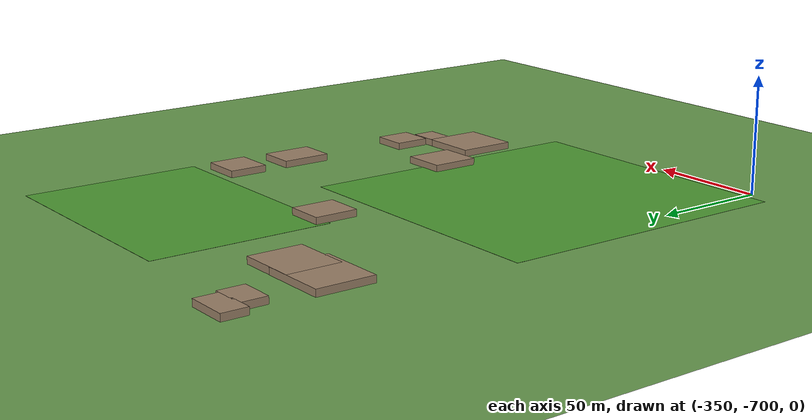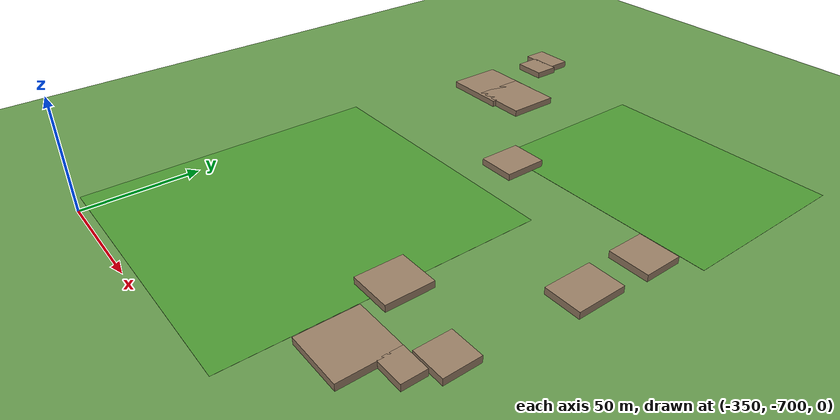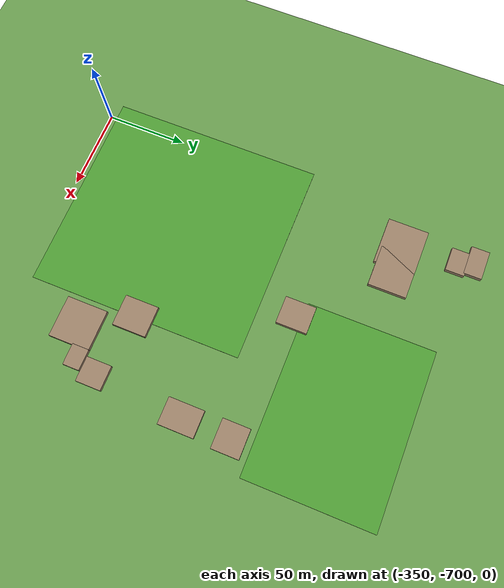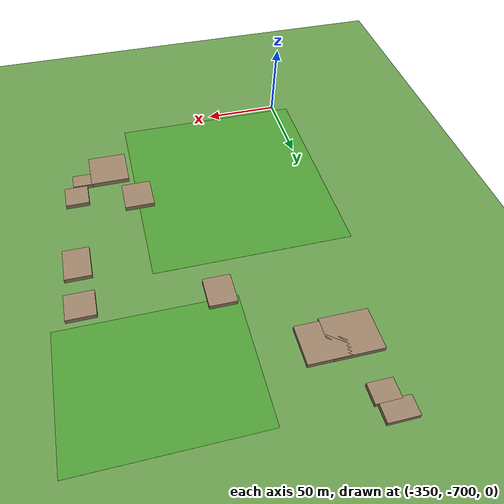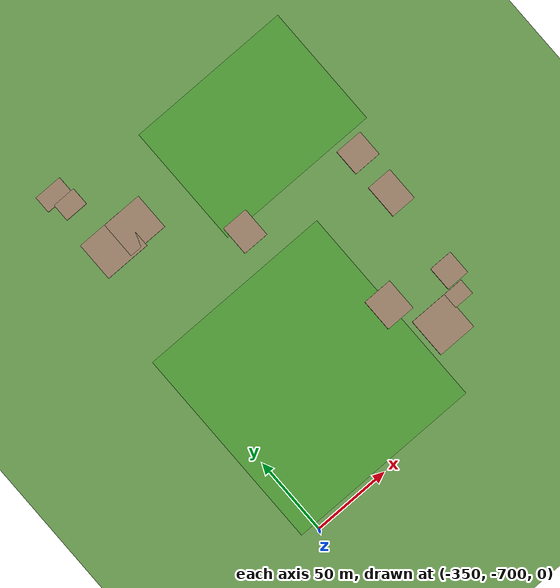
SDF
<sdf version="1.9">
 <world name="kimje_farmland">
  <model name="ground_plane">
   <static>true</static>
   <link name="link">
    <collision name="collision">
     <geometry><plane><normal>0 0 1</normal><size>2000 2000</size></plane></geometry>
    </collision>
    <visual name="visual">
     <geometry><plane><normal>0 0 1</normal><size>2000 2000</size></plane></geometry>
     <material><ambient>0.4 0.6 0.3 1</ambient><diffuse>0.4 0.6 0.3 1</diffuse></material>
    </visual>
   </link>
  </model>
  <model name="osm_178">
   <static>true</static>
   <pose>-195.23 -636.33 1.500 0 0 0</pose>
   <link name="link">
    <collision name="collision"><geometry><box><size>15.09 15.52 3.000</size></box></geometry></collision>
    <visual name="visual">
     <geometry><box><size>15.09 15.52 3.000</size></box></geometry>
     <material><ambient>0.6 0.5 0.4 1</ambient><diffuse>0.6 0.5 0.4 1</diffuse></material>
    </visual>
   </link>
  </model>
  <model name="osm_179">
   <static>true</static>
   <pose>-200.03 -649.95 1.500 0 0 0</pose>
   <link name="link">
    <collision name="collision"><geometry><box><size>12.92 10.24 3.000</size></box></geometry></collision>
    <visual name="visual">
     <geometry><box><size>12.92 10.24 3.000</size></box></geometry>
     <material><ambient>0.6 0.5 0.4 1</ambient><diffuse>0.6 0.5 0.4 1</diffuse></material>
    </visual>
   </link>
  </model>
  <model name="osm_182">
   <static>true</static>
   <pose>-218.29 -657.49 1.500 0 0 0</pose>
   <link name="link">
    <collision name="collision"><geometry><box><size>25.18 25.29 3.000</size></box></geometry></collision>
    <visual name="visual">
     <geometry><box><size>25.18 25.29 3.000</size></box></geometry>
     <material><ambient>0.6 0.5 0.4 1</ambient><diffuse>0.6 0.5 0.4 1</diffuse></material>
    </visual>
   </link>
  </model>
  <model name="osm_183">
   <static>true</static>
   <pose>-234.66 -628.58 1.500 0 0 0</pose>
   <link name="link">
    <collision name="collision"><geometry><box><size>19.01 20.77 3.000</size></box></geometry></collision>
    <visual name="visual">
     <geometry><box><size>19.01 20.77 3.000</size></box></geometry>
     <material><ambient>0.6 0.5 0.4 1</ambient><diffuse>0.6 0.5 0.4 1</diffuse></material>
    </visual>
   </link>
  </model>
  <model name="osm_829">
   <static>true</static>
   <pose>-339.77 -453.50 1.500 0 0 0</pose>
   <link name="link">
    <collision name="collision"><geometry><box><size>18.07 11.08 3.000</size></box></geometry></collision>
    <visual name="visual">
     <geometry><box><size>18.07 11.08 3.000</size></box></geometry>
     <material><ambient>0.6 0.5 0.4 1</ambient><diffuse>0.6 0.5 0.4 1</diffuse></material>
    </visual>
   </link>
  </model>
  <model name="osm_872">
   <static>true</static>
   <pose>-336.26 -463.93 1.500 0 0 0</pose>
   <link name="link">
    <collision name="collision"><geometry><box><size>14.86 11.54 3.000</size></box></geometry></collision>
    <visual name="visual">
     <geometry><box><size>14.86 11.54 3.000</size></box></geometry>
     <material><ambient>0.6 0.5 0.4 1</ambient><diffuse>0.6 0.5 0.4 1</diffuse></material>
    </visual>
   </link>
  </model>
  <model name="osm_874">
   <static>true</static>
   <pose>-332.78 -498.39 1.500 0 0 0</pose>
   <link name="link">
    <collision name="collision"><geometry><box><size>29.32 25.15 3.000</size></box></geometry></collision>
    <visual name="visual">
     <geometry><box><size>29.32 25.15 3.000</size></box></geometry>
     <material><ambient>0.6 0.5 0.4 1</ambient><diffuse>0.6 0.5 0.4 1</diffuse></material>
    </visual>
   </link>
  </model>
  <model name="osm_875">
   <static>true</static>
   <pose>-316.13 -497.69 1.500 0 0 0</pose>
   <link name="link">
    <collision name="collision"><geometry><box><size>25.85 23.51 3.000</size></box></geometry></collision>
    <visual name="visual">
     <geometry><box><size>25.85 23.51 3.000</size></box></geometry>
     <material><ambient>0.6 0.5 0.4 1</ambient><diffuse>0.6 0.5 0.4 1</diffuse></material>
    </visual>
   </link>
  </model>
  <model name="osm_894">
   <static>true</static>
   <pose>-269.82 -542.00 1.500 0 0 0</pose>
   <link name="link">
    <collision name="collision"><geometry><box><size>16.90 19.11 3.000</size></box></geometry></collision>
    <visual name="visual">
     <geometry><box><size>16.90 19.11 3.000</size></box></geometry>
     <material><ambient>0.6 0.5 0.4 1</ambient><diffuse>0.6 0.5 0.4 1</diffuse></material>
    </visual>
   </link>
  </model>
  <model name="osm_895">
   <static>true</static>
   <pose>-190.62 -550.28 1.500 0 0 0</pose>
   <link name="link">
    <collision name="collision"><geometry><box><size>17.89 16.98 3.000</size></box></geometry></collision>
    <visual name="visual">
     <geometry><box><size>17.89 16.98 3.000</size></box></geometry>
     <material><ambient>0.6 0.5 0.4 1</ambient><diffuse>0.6 0.5 0.4 1</diffuse></material>
    </visual>
   </link>
  </model>
  <model name="osm_899">
   <static>true</static>
   <pose>-191.11 -580.38 1.500 0 0 0</pose>
   <link name="link">
    <collision name="collision"><geometry><box><size>16.42 21.83 3.000</size></box></geometry></collision>
    <visual name="visual">
     <geometry><box><size>16.42 21.83 3.000</size></box></geometry>
     <material><ambient>0.6 0.5 0.4 1</ambient><diffuse>0.6 0.5 0.4 1</diffuse></material>
    </visual>
   </link>
  </model>
  <model name="osm_945">
   <static>true</static>
   <pose>-226.55 -498.59 0.025 0 0 0</pose>
   <link name="link">
    <collision name="collision"><geometry><box><size>106.55 78.95 0.050</size></box></geometry></collision>
    <visual name="visual">
     <geometry><box><size>106.55 78.95 0.050</size></box></geometry>
     <material><ambient>0.3 0.6 0.2 1</ambient><diffuse>0.3 0.6 0.2 1</diffuse></material>
    </visual>
   </link>
  </model>
  <model name="osm_947">
   <static>true</static>
   <pose>-297.13 -630.30 0.025 0 0 0</pose>
   <link name="link">
    <collision name="collision"><geometry><box><size>125.88 132.21 0.050</size></box></geometry></collision>
    <visual name="visual">
     <geometry><box><size>125.88 132.21 0.050</size></box></geometry>
     <material><ambient>0.3 0.6 0.2 1</ambient><diffuse>0.3 0.6 0.2 1</diffuse></material>
    </visual>
   </link>
  </model>
 </world>
</sdf>
